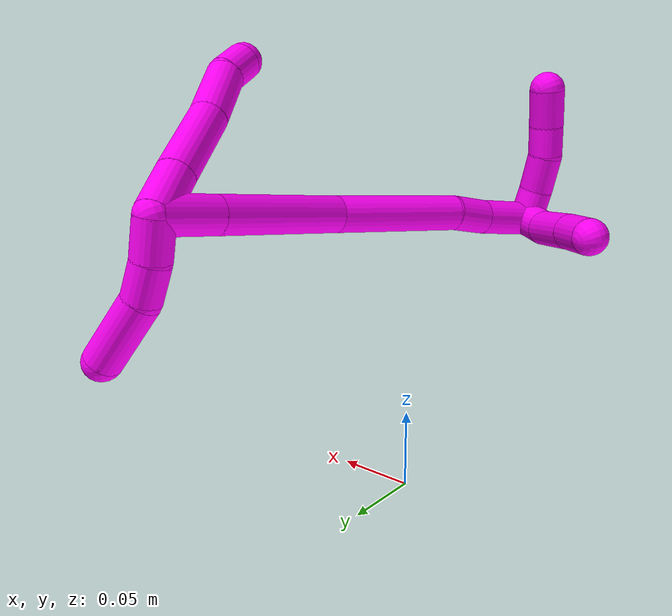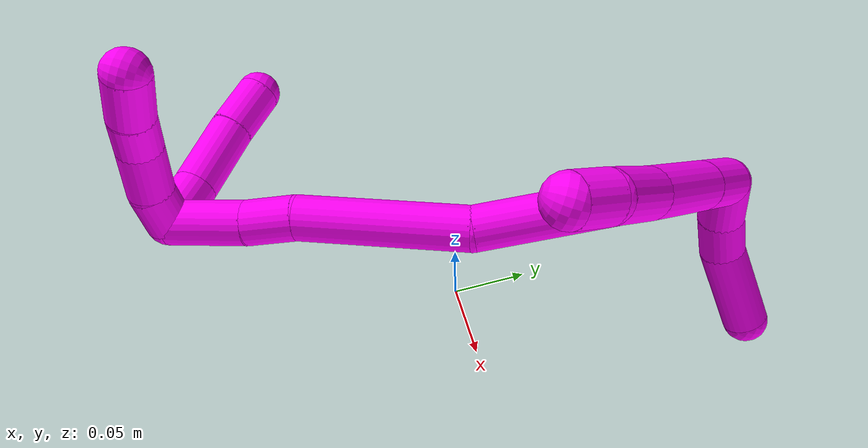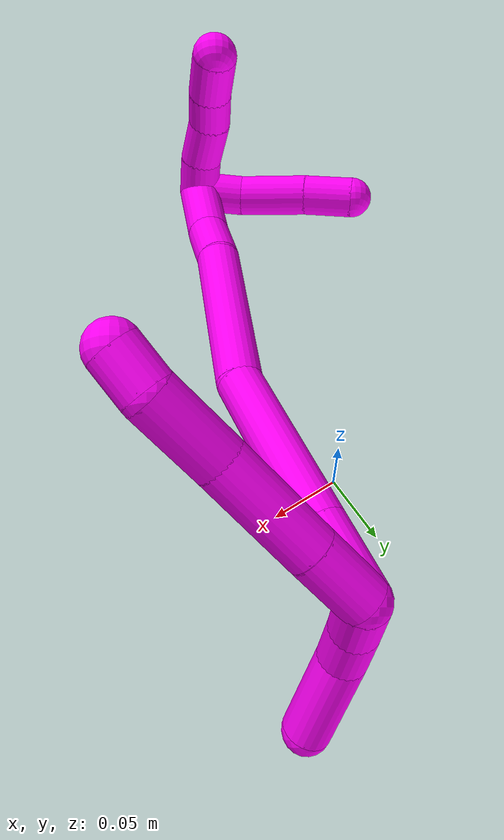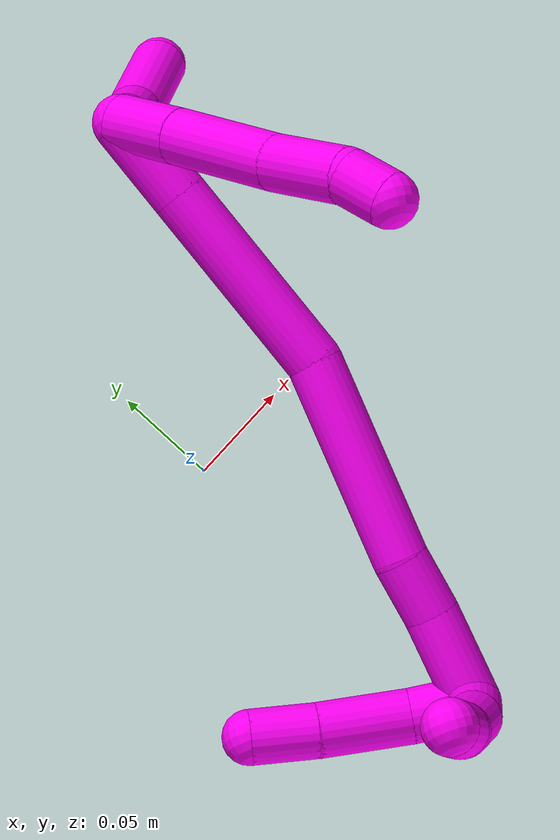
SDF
<sdf version="1.7">
 <world name="default">
  <model name="10">
   <static>0</static>
   <link name="10">
    <collision name="collision-cylinder-e_1_2_8">
     <pose>0.006727 -0.011286 0.010217 0.835084 0.416091 0.186755</pose>
     <geometry><cylinder><radius>0.0125</radius><length>0.033287</length></cylinder></geometry>
     <surface>
      <friction><ode><mu>1.16</mu><mu2>1.16</mu2><slip1>0</slip1><slip2>0</slip2></ode></friction>
      <contact><ode><kp>1e+06</kp><kd>1</kd><max_vel>0</max_vel><min_depth>0.001</min_depth></ode></contact>
     </surface>
    </collision>
    <visual name="visual-cylinder-e_1_2_8">
     <pose>0.006727 -0.011286 0.010217 0.835084 0.416091 0.186755</pose>
     <geometry><cylinder><radius>0.0125</radius><length>0.033287</length></cylinder></geometry>
     <material><ambient>1 0 0.964706 1</ambient></material>
    </visual>
    <collision name="collision-cylinder-e_2_8_9">
     <pose>0.023867 -0.040824 0.037593 0.81622 0.393929 0.172141</pose>
     <geometry><cylinder><radius>0.0125</radius><length>0.054259</length></cylinder></geometry>
     <surface>
      <friction><ode><mu>1.16</mu><mu2>1.16</mu2><slip1>0</slip1><slip2>0</slip2></ode></friction>
      <contact><ode><kp>1e+06</kp><kd>1</kd><max_vel>0</max_vel><min_depth>0.001</min_depth></ode></contact>
     </surface>
    </collision>
    <visual name="visual-cylinder-e_2_8_9">
     <pose>0.023867 -0.040824 0.037593 0.81622 0.393929 0.172141</pose>
     <geometry><cylinder><radius>0.0125</radius><length>0.054259</length></cylinder></geometry>
     <material><ambient>1 0 0.964706 1</ambient></material>
    </visual>
    <collision name="collision-cylinder-e_3_9_10">
     <pose>0.043711 -0.07253 0.066474 0.854139 0.486184 0.224765</pose>
     <geometry><cylinder><radius>0.0125</radius><length>0.040366</length></cylinder></geometry>
     <surface>
      <friction><ode><mu>1.16</mu><mu2>1.16</mu2><slip1>0</slip1><slip2>0</slip2></ode></friction>
      <contact><ode><kp>1e+06</kp><kd>1</kd><max_vel>0</max_vel><min_depth>0.001</min_depth></ode></contact>
     </surface>
    </collision>
    <visual name="visual-cylinder-e_3_9_10">
     <pose>0.043711 -0.07253 0.066474 0.854139 0.486184 0.224765</pose>
     <geometry><cylinder><radius>0.0125</radius><length>0.040366</length></cylinder></geometry>
     <material><ambient>1 0 0.964706 1</ambient></material>
    </visual>
    <collision name="collision-cylinder-e_4_10_6">
     <pose>0.055431 -0.092437 0.086861 0.64005 0.208886 0.069453</pose>
     <geometry><cylinder><radius>0.0125</radius><length>0.022088</length></cylinder></geometry>
     <surface>
      <friction><ode><mu>1.16</mu><mu2>1.16</mu2><slip1>0</slip1><slip2>0</slip2></ode></friction>
      <contact><ode><kp>1e+06</kp><kd>1</kd><max_vel>0</max_vel><min_depth>0.001</min_depth></ode></contact>
     </surface>
    </collision>
    <visual name="visual-cylinder-e_4_10_6">
     <pose>0.055431 -0.092437 0.086861 0.64005 0.208886 0.069453</pose>
     <geometry><cylinder><radius>0.0125</radius><length>0.022088</length></cylinder></geometry>
     <material><ambient>1 0 0.964706 1</ambient></material>
    </visual>
    <collision name="collision-cylinder-e_1_2_11">
     <pose>-0.012537 -0.000306 -0.004674 3.07621 -1.21322 -3.0474</pose>
     <geometry><cylinder><radius>0.0125</radius><length>0.026768</length></cylinder></geometry>
     <surface>
      <friction><ode><mu>1.16</mu><mu2>1.16</mu2><slip1>0</slip1><slip2>0</slip2></ode></friction>
      <contact><ode><kp>1e+06</kp><kd>1</kd><max_vel>0</max_vel><min_depth>0.001</min_depth></ode></contact>
     </surface>
    </collision>
    <visual name="visual-cylinder-e_1_2_11">
     <pose>-0.012537 -0.000306 -0.004674 3.07621 -1.21322 -3.0474</pose>
     <geometry><cylinder><radius>0.0125</radius><length>0.026768</length></cylinder></geometry>
     <material><ambient>1 0 0.964706 1</ambient></material>
    </visual>
    <collision name="collision-cylinder-e_2_11_12">
     <pose>-0.035888 -0.002221 -0.015131 2.87027 -1.0641 -2.6859</pose>
     <geometry><cylinder><radius>0.0125</radius><length>0.024734</length></cylinder></geometry>
     <surface>
      <friction><ode><mu>1.16</mu><mu2>1.16</mu2><slip1>0</slip1><slip2>0</slip2></ode></friction>
      <contact><ode><kp>1e+06</kp><kd>1</kd><max_vel>0</max_vel><min_depth>0.001</min_depth></ode></contact>
     </surface>
    </collision>
    <visual name="visual-cylinder-e_2_11_12">
     <pose>-0.035888 -0.002221 -0.015131 2.87027 -1.0641 -2.6859</pose>
     <geometry><cylinder><radius>0.0125</radius><length>0.024734</length></cylinder></geometry>
     <material><ambient>1 0 0.964706 1</ambient></material>
    </visual>
    <collision name="collision-cylinder-e_3_12_5">
     <pose>-0.063656 -0.011492 -0.036464 2.68377 -0.774262 -2.10323</pose>
     <geometry><cylinder><radius>0.0125</radius><length>0.048498</length></cylinder></geometry>
     <surface>
      <friction><ode><mu>1.16</mu><mu2>1.16</mu2><slip1>0</slip1><slip2>0</slip2></ode></friction>
      <contact><ode><kp>1e+06</kp><kd>1</kd><max_vel>0</max_vel><min_depth>0.001</min_depth></ode></contact>
     </surface>
    </collision>
    <visual name="visual-cylinder-e_3_12_5">
     <pose>-0.063656 -0.011492 -0.036464 2.68377 -0.774262 -2.10323</pose>
     <geometry><cylinder><radius>0.0125</radius><length>0.048498</length></cylinder></geometry>
     <material><ambient>1 0 0.964706 1</ambient></material>
    </visual>
    <collision name="collision-cylinder-e_1_2_13">
     <pose>-0.007142 -0.006464 0.017814 0.348085 -0.360421 -0.064043</pose>
     <geometry><cylinder><radius>0.0125</radius><length>0.040504</length></cylinder></geometry>
     <surface>
      <friction><ode><mu>1.16</mu><mu2>1.16</mu2><slip1>0</slip1><slip2>0</slip2></ode></friction>
      <contact><ode><kp>1e+06</kp><kd>1</kd><max_vel>0</max_vel><min_depth>0.001</min_depth></ode></contact>
     </surface>
    </collision>
    <visual name="visual-cylinder-e_1_2_13">
     <pose>-0.007142 -0.006464 0.017814 0.348085 -0.360421 -0.064043</pose>
     <geometry><cylinder><radius>0.0125</radius><length>0.040504</length></cylinder></geometry>
     <material><ambient>1 0 0.964706 1</ambient></material>
    </visual>
    <collision name="collision-cylinder-e_2_13_14">
     <pose>-0.030628 -0.027935 0.076793 0.349587 -0.357024 -0.063706</pose>
     <geometry><cylinder><radius>0.0125</radius><length>0.093528</length></cylinder></geometry>
     <surface>
      <friction><ode><mu>1.16</mu><mu2>1.16</mu2><slip1>0</slip1><slip2>0</slip2></ode></friction>
      <contact><ode><kp>1e+06</kp><kd>1</kd><max_vel>0</max_vel><min_depth>0.001</min_depth></ode></contact>
     </surface>
    </collision>
    <visual name="visual-cylinder-e_2_13_14">
     <pose>-0.030628 -0.027935 0.076793 0.349587 -0.357024 -0.063706</pose>
     <geometry><cylinder><radius>0.0125</radius><length>0.093528</length></cylinder></geometry>
     <material><ambient>1 0 0.964706 1</ambient></material>
    </visual>
    <collision name="collision-cylinder-e_3_14_15">
     <pose>-0.061237 -0.045774 0.162706 0.063199 -0.308043 -0.009815</pose>
     <geometry><cylinder><radius>0.0125</radius><length>0.094106</length></cylinder></geometry>
     <surface>
      <friction><ode><mu>1.16</mu><mu2>1.16</mu2><slip1>0</slip1><slip2>0</slip2></ode></friction>
      <contact><ode><kp>1e+06</kp><kd>1</kd><max_vel>0</max_vel><min_depth>0.001</min_depth></ode></contact>
     </surface>
    </collision>
    <visual name="visual-cylinder-e_3_14_15">
     <pose>-0.061237 -0.045774 0.162706 0.063199 -0.308043 -0.009815</pose>
     <geometry><cylinder><radius>0.0125</radius><length>0.094106</length></cylinder></geometry>
     <material><ambient>1 0 0.964706 1</ambient></material>
    </visual>
    <collision name="collision-cylinder-e_4_15_16">
     <pose>-0.08157 -0.050737 0.219991 0.168429 -0.44515 -0.038205</pose>
     <geometry><cylinder><radius>0.0125</radius><length>0.028177</length></cylinder></geometry>
     <surface>
      <friction><ode><mu>1.16</mu><mu2>1.16</mu2><slip1>0</slip1><slip2>0</slip2></ode></friction>
      <contact><ode><kp>1e+06</kp><kd>1</kd><max_vel>0</max_vel><min_depth>0.001</min_depth></ode></contact>
     </surface>
    </collision>
    <visual name="visual-cylinder-e_4_15_16">
     <pose>-0.08157 -0.050737 0.219991 0.168429 -0.44515 -0.038205</pose>
     <geometry><cylinder><radius>0.0125</radius><length>0.028177</length></cylinder></geometry>
     <material><ambient>1 0 0.964706 1</ambient></material>
    </visual>
    <collision name="collision-cylinder-e_5_16_1">
     <pose>-0.095268 -0.054795 0.252902 0.094255 -0.356929 -0.017014</pose>
     <geometry><cylinder><radius>0.0125</radius><length>0.043685</length></cylinder></geometry>
     <surface>
      <friction><ode><mu>1.16</mu><mu2>1.16</mu2><slip1>0</slip1><slip2>0</slip2></ode></friction>
      <contact><ode><kp>1e+06</kp><kd>1</kd><max_vel>0</max_vel><min_depth>0.001</min_depth></ode></contact>
     </surface>
    </collision>
    <visual name="visual-cylinder-e_5_16_1">
     <pose>-0.095268 -0.054795 0.252902 0.094255 -0.356929 -0.017014</pose>
     <geometry><cylinder><radius>0.0125</radius><length>0.043685</length></cylinder></geometry>
     <material><ambient>1 0 0.964706 1</ambient></material>
    </visual>
    <collision name="collision-cylinder-e_1_1_17">
     <pose>-0.092635 -0.056018 0.278579 -0.131914 1.09043 -0.080084</pose>
     <geometry><cylinder><radius>0.0125</radius><length>0.02315</length></cylinder></geometry>
     <surface>
      <friction><ode><mu>1.16</mu><mu2>1.16</mu2><slip1>0</slip1><slip2>0</slip2></ode></friction>
      <contact><ode><kp>1e+06</kp><kd>1</kd><max_vel>0</max_vel><min_depth>0.001</min_depth></ode></contact>
     </surface>
    </collision>
    <visual name="visual-cylinder-e_1_1_17">
     <pose>-0.092635 -0.056018 0.278579 -0.131914 1.09043 -0.080084</pose>
     <geometry><cylinder><radius>0.0125</radius><length>0.02315</length></cylinder></geometry>
     <material><ambient>1 0 0.964706 1</ambient></material>
    </visual>
    <collision name="collision-cylinder-e_2_17_18">
     <pose>-0.069402 -0.052582 0.287939 -0.592617 1.21012 -0.416165</pose>
     <geometry><cylinder><radius>0.0125</radius><length>0.027719</length></cylinder></geometry>
     <surface>
      <friction><ode><mu>1.16</mu><mu2>1.16</mu2><slip1>0</slip1><slip2>0</slip2></ode></friction>
      <contact><ode><kp>1e+06</kp><kd>1</kd><max_vel>0</max_vel><min_depth>0.001</min_depth></ode></contact>
     </surface>
    </collision>
    <visual name="visual-cylinder-e_2_17_18">
     <pose>-0.069402 -0.052582 0.287939 -0.592617 1.21012 -0.416165</pose>
     <geometry><cylinder><radius>0.0125</radius><length>0.027719</length></cylinder></geometry>
     <material><ambient>1 0 0.964706 1</ambient></material>
    </visual>
    <collision name="collision-cylinder-e_3_18_19">
     <pose>-0.045693 -0.049857 0.293883 0.003255 1.3969 0.002733</pose>
     <geometry><cylinder><radius>0.0125</radius><length>0.021811</length></cylinder></geometry>
     <surface>
      <friction><ode><mu>1.16</mu><mu2>1.16</mu2><slip1>0</slip1><slip2>0</slip2></ode></friction>
      <contact><ode><kp>1e+06</kp><kd>1</kd><max_vel>0</max_vel><min_depth>0.001</min_depth></ode></contact>
     </surface>
    </collision>
    <visual name="visual-cylinder-e_3_18_19">
     <pose>-0.045693 -0.049857 0.293883 0.003255 1.3969 0.002733</pose>
     <geometry><cylinder><radius>0.0125</radius><length>0.021811</length></cylinder></geometry>
     <material><ambient>1 0 0.964706 1</ambient></material>
    </visual>
    <collision name="collision-cylinder-e_4_19_4">
     <pose>-0.021405 -0.048712 0.297094 -0.715538 1.44203 -0.634918</pose>
     <geometry><cylinder><radius>0.0125</radius><length>0.02732</length></cylinder></geometry>
     <surface>
      <friction><ode><mu>1.16</mu><mu2>1.16</mu2><slip1>0</slip1><slip2>0</slip2></ode></friction>
      <contact><ode><kp>1e+06</kp><kd>1</kd><max_vel>0</max_vel><min_depth>0.001</min_depth></ode></contact>
     </surface>
    </collision>
    <visual name="visual-cylinder-e_4_19_4">
     <pose>-0.021405 -0.048712 0.297094 -0.715538 1.44203 -0.634918</pose>
     <geometry><cylinder><radius>0.0125</radius><length>0.02732</length></cylinder></geometry>
     <material><ambient>1 0 0.964706 1</ambient></material>
    </visual>
    <collision name="collision-cylinder-e_1_1_20">
     <pose>-0.102819 -0.042786 0.271385 -1.70573 0.005773 -0.00661</pose>
     <geometry><cylinder><radius>0.0125</radius><length>0.028127</length></cylinder></geometry>
     <surface>
      <friction><ode><mu>1.16</mu><mu2>1.16</mu2><slip1>0</slip1><slip2>0</slip2></ode></friction>
      <contact><ode><kp>1e+06</kp><kd>1</kd><max_vel>0</max_vel><min_depth>0.001</min_depth></ode></contact>
     </surface>
    </collision>
    <visual name="visual-cylinder-e_1_1_20">
     <pose>-0.102819 -0.042786 0.271385 -1.70573 0.005773 -0.00661</pose>
     <geometry><cylinder><radius>0.0125</radius><length>0.028127</length></cylinder></geometry>
     <material><ambient>1 0 0.964706 1</ambient></material>
    </visual>
    <collision name="collision-cylinder-e_2_20_21">
     <pose>-0.098191 -0.008657 0.26636 -1.72472 0.218945 -0.255167</pose>
     <geometry><cylinder><radius>0.0125</radius><length>0.04187</length></cylinder></geometry>
     <surface>
      <friction><ode><mu>1.16</mu><mu2>1.16</mu2><slip1>0</slip1><slip2>0</slip2></ode></friction>
      <contact><ode><kp>1e+06</kp><kd>1</kd><max_vel>0</max_vel><min_depth>0.001</min_depth></ode></contact>
     </surface>
    </collision>
    <visual name="visual-cylinder-e_2_20_21">
     <pose>-0.098191 -0.008657 0.26636 -1.72472 0.218945 -0.255167</pose>
     <geometry><cylinder><radius>0.0125</radius><length>0.04187</length></cylinder></geometry>
     <material><ambient>1 0 0.964706 1</ambient></material>
    </visual>
    <collision name="collision-cylinder-e_3_21_3">
     <pose>-0.090779 0.02593 0.260115 -1.78371 0.192124 -0.237707</pose>
     <geometry><cylinder><radius>0.0125</radius><length>0.030003</length></cylinder></geometry>
     <surface>
      <friction><ode><mu>1.16</mu><mu2>1.16</mu2><slip1>0</slip1><slip2>0</slip2></ode></friction>
      <contact><ode><kp>1e+06</kp><kd>1</kd><max_vel>0</max_vel><min_depth>0.001</min_depth></ode></contact>
     </surface>
    </collision>
    <visual name="visual-cylinder-e_3_21_3">
     <pose>-0.090779 0.02593 0.260115 -1.78371 0.192124 -0.237707</pose>
     <geometry><cylinder><radius>0.0125</radius><length>0.030003</length></cylinder></geometry>
     <material><ambient>1 0 0.964706 1</ambient></material>
    </visual>
    <collision name="collision-sphere-3">
     <pose>-0.087915 0.040323 0.257004 0 -0 0</pose>
     <geometry><sphere><radius>0.0125</radius></sphere></geometry>
     <surface>
      <friction><ode><mu>1.16</mu><mu2>1.16</mu2><slip1>0</slip1><slip2>0</slip2></ode></friction>
      <contact><ode><kp>1e+06</kp><kd>1</kd><max_vel>0</max_vel><min_depth>0.001</min_depth></ode></contact>
     </surface>
    </collision>
    <visual name="visual-sphere-3">
     <pose>-0.087915 0.040323 0.257004 0 -0 0</pose>
     <geometry><sphere><radius>0.0125</radius></sphere></geometry>
     <material><ambient>1 0 0.964706 1</ambient></material>
    </visual>
    <collision name="collision-sphere-21">
     <pose>-0.093644 0.011536 0.263227 0 -0 0</pose>
     <geometry><sphere><radius>0.0125</radius></sphere></geometry>
     <surface>
      <friction><ode><mu>1.16</mu><mu2>1.16</mu2><slip1>0</slip1><slip2>0</slip2></ode></friction>
      <contact><ode><kp>1e+06</kp><kd>1</kd><max_vel>0</max_vel><min_depth>0.001</min_depth></ode></contact>
     </surface>
    </collision>
    <visual name="visual-sphere-21">
     <pose>-0.093644 0.011536 0.263227 0 -0 0</pose>
     <geometry><sphere><radius>0.0125</radius></sphere></geometry>
     <material><ambient>1 0 0.964706 1</ambient></material>
    </visual>
    <collision name="collision-sphere-20">
     <pose>-0.102738 -0.02885 0.269493 0 -0 0</pose>
     <geometry><sphere><radius>0.0125</radius></sphere></geometry>
     <surface>
      <friction><ode><mu>1.16</mu><mu2>1.16</mu2><slip1>0</slip1><slip2>0</slip2></ode></friction>
      <contact><ode><kp>1e+06</kp><kd>1</kd><max_vel>0</max_vel><min_depth>0.001</min_depth></ode></contact>
     </surface>
    </collision>
    <visual name="visual-sphere-20">
     <pose>-0.102738 -0.02885 0.269493 0 -0 0</pose>
     <geometry><sphere><radius>0.0125</radius></sphere></geometry>
     <material><ambient>1 0 0.964706 1</ambient></material>
    </visual>
    <collision name="collision-sphere-4">
     <pose>-0.007859 -0.047562 0.298417 0 -0 0</pose>
     <geometry><sphere><radius>0.0125</radius></sphere></geometry>
     <surface>
      <friction><ode><mu>1.16</mu><mu2>1.16</mu2><slip1>0</slip1><slip2>0</slip2></ode></friction>
      <contact><ode><kp>1e+06</kp><kd>1</kd><max_vel>0</max_vel><min_depth>0.001</min_depth></ode></contact>
     </surface>
    </collision>
    <visual name="visual-sphere-4">
     <pose>-0.007859 -0.047562 0.298417 0 -0 0</pose>
     <geometry><sphere><radius>0.0125</radius></sphere></geometry>
     <material><ambient>1 0 0.964706 1</ambient></material>
    </visual>
    <collision name="collision-sphere-11">
     <pose>-0.025075 -0.000612 -0.009349 0 -0 0</pose>
     <geometry><sphere><radius>0.0125</radius></sphere></geometry>
     <surface>
      <friction><ode><mu>1.16</mu><mu2>1.16</mu2><slip1>0</slip1><slip2>0</slip2></ode></friction>
      <contact><ode><kp>1e+06</kp><kd>1</kd><max_vel>0</max_vel><min_depth>0.001</min_depth></ode></contact>
     </surface>
    </collision>
    <visual name="visual-sphere-11">
     <pose>-0.025075 -0.000612 -0.009349 0 -0 0</pose>
     <geometry><sphere><radius>0.0125</radius></sphere></geometry>
     <material><ambient>1 0 0.964706 1</ambient></material>
    </visual>
    <collision name="collision-sphere-6">
     <pose>0.057722 -0.098889 0.095527 0 -0 0</pose>
     <geometry><sphere><radius>0.0125</radius></sphere></geometry>
     <surface>
      <friction><ode><mu>1.16</mu><mu2>1.16</mu2><slip1>0</slip1><slip2>0</slip2></ode></friction>
      <contact><ode><kp>1e+06</kp><kd>1</kd><max_vel>0</max_vel><min_depth>0.001</min_depth></ode></contact>
     </surface>
    </collision>
    <visual name="visual-sphere-6">
     <pose>0.057722 -0.098889 0.095527 0 -0 0</pose>
     <geometry><sphere><radius>0.0125</radius></sphere></geometry>
     <material><ambient>1 0 0.964706 1</ambient></material>
    </visual>
    <collision name="collision-sphere-10">
     <pose>0.053141 -0.085985 0.078196 0 -0 0</pose>
     <geometry><sphere><radius>0.0125</radius></sphere></geometry>
     <surface>
      <friction><ode><mu>1.16</mu><mu2>1.16</mu2><slip1>0</slip1><slip2>0</slip2></ode></friction>
      <contact><ode><kp>1e+06</kp><kd>1</kd><max_vel>0</max_vel><min_depth>0.001</min_depth></ode></contact>
     </surface>
    </collision>
    <visual name="visual-sphere-10">
     <pose>0.053141 -0.085985 0.078196 0 -0 0</pose>
     <geometry><sphere><radius>0.0125</radius></sphere></geometry>
     <material><ambient>1 0 0.964706 1</ambient></material>
    </visual>
    <collision name="collision-sphere-9">
     <pose>0.03428 -0.059075 0.054753 0 -0 0</pose>
     <geometry><sphere><radius>0.0125</radius></sphere></geometry>
     <surface>
      <friction><ode><mu>1.16</mu><mu2>1.16</mu2><slip1>0</slip1><slip2>0</slip2></ode></friction>
      <contact><ode><kp>1e+06</kp><kd>1</kd><max_vel>0</max_vel><min_depth>0.001</min_depth></ode></contact>
     </surface>
    </collision>
    <visual name="visual-sphere-9">
     <pose>0.03428 -0.059075 0.054753 0 -0 0</pose>
     <geometry><sphere><radius>0.0125</radius></sphere></geometry>
     <material><ambient>1 0 0.964706 1</ambient></material>
    </visual>
    <collision name="collision-sphere-2">
     <geometry><sphere><radius>0.0125</radius></sphere></geometry>
     <surface>
      <friction><ode><mu>1.16</mu><mu2>1.16</mu2><slip1>0</slip1><slip2>0</slip2></ode></friction>
      <contact><ode><kp>1e+06</kp><kd>1</kd><max_vel>0</max_vel><min_depth>0.001</min_depth></ode></contact>
     </surface>
    </collision>
    <visual name="visual-sphere-2">
     <geometry><sphere><radius>0.0125</radius></sphere></geometry>
     <material><ambient>1 0 0.964706 1</ambient></material>
    </visual>
    <collision name="collision-sphere-19">
     <pose>-0.034952 -0.049863 0.29577 0 -0 0</pose>
     <geometry><sphere><radius>0.0125</radius></sphere></geometry>
     <surface>
      <friction><ode><mu>1.16</mu><mu2>1.16</mu2><slip1>0</slip1><slip2>0</slip2></ode></friction>
      <contact><ode><kp>1e+06</kp><kd>1</kd><max_vel>0</max_vel><min_depth>0.001</min_depth></ode></contact>
     </surface>
    </collision>
    <visual name="visual-sphere-19">
     <pose>-0.034952 -0.049863 0.29577 0 -0 0</pose>
     <geometry><sphere><radius>0.0125</radius></sphere></geometry>
     <material><ambient>1 0 0.964706 1</ambient></material>
    </visual>
    <collision name="collision-sphere-8">
     <pose>0.013454 -0.022572 0.020434 0 -0 0</pose>
     <geometry><sphere><radius>0.0125</radius></sphere></geometry>
     <surface>
      <friction><ode><mu>1.16</mu><mu2>1.16</mu2><slip1>0</slip1><slip2>0</slip2></ode></friction>
      <contact><ode><kp>1e+06</kp><kd>1</kd><max_vel>0</max_vel><min_depth>0.001</min_depth></ode></contact>
     </surface>
    </collision>
    <visual name="visual-sphere-8">
     <pose>0.013454 -0.022572 0.020434 0 -0 0</pose>
     <geometry><sphere><radius>0.0125</radius></sphere></geometry>
     <material><ambient>1 0 0.964706 1</ambient></material>
    </visual>
    <collision name="collision-sphere-12">
     <pose>-0.046701 -0.003829 -0.020913 0 -0 0</pose>
     <geometry><sphere><radius>0.0125</radius></sphere></geometry>
     <surface>
      <friction><ode><mu>1.16</mu><mu2>1.16</mu2><slip1>0</slip1><slip2>0</slip2></ode></friction>
      <contact><ode><kp>1e+06</kp><kd>1</kd><max_vel>0</max_vel><min_depth>0.001</min_depth></ode></contact>
     </surface>
    </collision>
    <visual name="visual-sphere-12">
     <pose>-0.046701 -0.003829 -0.020913 0 -0 0</pose>
     <geometry><sphere><radius>0.0125</radius></sphere></geometry>
     <material><ambient>1 0 0.964706 1</ambient></material>
    </visual>
    <collision name="collision-sphere-5">
     <pose>-0.08061 -0.019154 -0.052015 0 -0 0</pose>
     <geometry><sphere><radius>0.0125</radius></sphere></geometry>
     <surface>
      <friction><ode><mu>1.16</mu><mu2>1.16</mu2><slip1>0</slip1><slip2>0</slip2></ode></friction>
      <contact><ode><kp>1e+06</kp><kd>1</kd><max_vel>0</max_vel><min_depth>0.001</min_depth></ode></contact>
     </surface>
    </collision>
    <visual name="visual-sphere-5">
     <pose>-0.08061 -0.019154 -0.052015 0 -0 0</pose>
     <geometry><sphere><radius>0.0125</radius></sphere></geometry>
     <material><ambient>1 0 0.964706 1</ambient></material>
    </visual>
    <collision name="collision-sphere-13">
     <pose>-0.014284 -0.012928 0.035628 0 -0 0</pose>
     <geometry><sphere><radius>0.0125</radius></sphere></geometry>
     <surface>
      <friction><ode><mu>1.16</mu><mu2>1.16</mu2><slip1>0</slip1><slip2>0</slip2></ode></friction>
      <contact><ode><kp>1e+06</kp><kd>1</kd><max_vel>0</max_vel><min_depth>0.001</min_depth></ode></contact>
     </surface>
    </collision>
    <visual name="visual-sphere-13">
     <pose>-0.014284 -0.012928 0.035628 0 -0 0</pose>
     <geometry><sphere><radius>0.0125</radius></sphere></geometry>
     <material><ambient>1 0 0.964706 1</ambient></material>
    </visual>
    <collision name="collision-sphere-14">
     <pose>-0.046971 -0.042942 0.117958 0 -0 0</pose>
     <geometry><sphere><radius>0.0125</radius></sphere></geometry>
     <surface>
      <friction><ode><mu>1.16</mu><mu2>1.16</mu2><slip1>0</slip1><slip2>0</slip2></ode></friction>
      <contact><ode><kp>1e+06</kp><kd>1</kd><max_vel>0</max_vel><min_depth>0.001</min_depth></ode></contact>
     </surface>
    </collision>
    <visual name="visual-sphere-14">
     <pose>-0.046971 -0.042942 0.117958 0 -0 0</pose>
     <geometry><sphere><radius>0.0125</radius></sphere></geometry>
     <material><ambient>1 0 0.964706 1</ambient></material>
    </visual>
    <collision name="collision-sphere-15">
     <pose>-0.075503 -0.048606 0.207455 0 -0 0</pose>
     <geometry><sphere><radius>0.0125</radius></sphere></geometry>
     <surface>
      <friction><ode><mu>1.16</mu><mu2>1.16</mu2><slip1>0</slip1><slip2>0</slip2></ode></friction>
      <contact><ode><kp>1e+06</kp><kd>1</kd><max_vel>0</max_vel><min_depth>0.001</min_depth></ode></contact>
     </surface>
    </collision>
    <visual name="visual-sphere-15">
     <pose>-0.075503 -0.048606 0.207455 0 -0 0</pose>
     <geometry><sphere><radius>0.0125</radius></sphere></geometry>
     <material><ambient>1 0 0.964706 1</ambient></material>
    </visual>
    <collision name="collision-sphere-16">
     <pose>-0.087636 -0.052869 0.232526 0 -0 0</pose>
     <geometry><sphere><radius>0.0125</radius></sphere></geometry>
     <surface>
      <friction><ode><mu>1.16</mu><mu2>1.16</mu2><slip1>0</slip1><slip2>0</slip2></ode></friction>
      <contact><ode><kp>1e+06</kp><kd>1</kd><max_vel>0</max_vel><min_depth>0.001</min_depth></ode></contact>
     </surface>
    </collision>
    <visual name="visual-sphere-16">
     <pose>-0.087636 -0.052869 0.232526 0 -0 0</pose>
     <geometry><sphere><radius>0.0125</radius></sphere></geometry>
     <material><ambient>1 0 0.964706 1</ambient></material>
    </visual>
    <collision name="collision-sphere-1">
     <pose>-0.1029 -0.056721 0.273277 0 -0 0</pose>
     <geometry><sphere><radius>0.0125</radius></sphere></geometry>
     <surface>
      <friction><ode><mu>1.16</mu><mu2>1.16</mu2><slip1>0</slip1><slip2>0</slip2></ode></friction>
      <contact><ode><kp>1e+06</kp><kd>1</kd><max_vel>0</max_vel><min_depth>0.001</min_depth></ode></contact>
     </surface>
    </collision>
    <visual name="visual-sphere-1">
     <pose>-0.1029 -0.056721 0.273277 0 -0 0</pose>
     <geometry><sphere><radius>0.0125</radius></sphere></geometry>
     <material><ambient>1 0 0.964706 1</ambient></material>
    </visual>
    <collision name="collision-sphere-18">
     <pose>-0.056435 -0.049851 0.291996 0 -0 0</pose>
     <geometry><sphere><radius>0.0125</radius></sphere></geometry>
     <surface>
      <friction><ode><mu>1.16</mu><mu2>1.16</mu2><slip1>0</slip1><slip2>0</slip2></ode></friction>
      <contact><ode><kp>1e+06</kp><kd>1</kd><max_vel>0</max_vel><min_depth>0.001</min_depth></ode></contact>
     </surface>
    </collision>
    <visual name="visual-sphere-18">
     <pose>-0.056435 -0.049851 0.291996 0 -0 0</pose>
     <geometry><sphere><radius>0.0125</radius></sphere></geometry>
     <material><ambient>1 0 0.964706 1</ambient></material>
    </visual>
    <collision name="collision-sphere-17">
     <pose>-0.08237 -0.055314 0.283882 0 -0 0</pose>
     <geometry><sphere><radius>0.0125</radius></sphere></geometry>
     <surface>
      <friction><ode><mu>1.16</mu><mu2>1.16</mu2><slip1>0</slip1><slip2>0</slip2></ode></friction>
      <contact><ode><kp>1e+06</kp><kd>1</kd><max_vel>0</max_vel><min_depth>0.001</min_depth></ode></contact>
     </surface>
    </collision>
    <visual name="visual-sphere-17">
     <pose>-0.08237 -0.055314 0.283882 0 -0 0</pose>
     <geometry><sphere><radius>0.0125</radius></sphere></geometry>
     <material><ambient>1 0 0.964706 1</ambient></material>
    </visual>
    <inertial>
     <pose>-0.040742 -0.033529 0.134298 0 -0 0</pose>
     <mass>0.75</mass>
     <inertia>
      <ixx>0.000177</ixx>
      <ixy>0</ixy>
      <ixz>0</ixz>
      <iyy>0.000183</iyy>
      <iyz>0</iyz>
      <izz>0.000109</izz>
     </inertia>
    </inertial>
   </link>
   <pose>0.085926 0.12177 0.185655 -0.277763 -1.32082 1.36009</pose>
  </model>
 </world>
</sdf>
